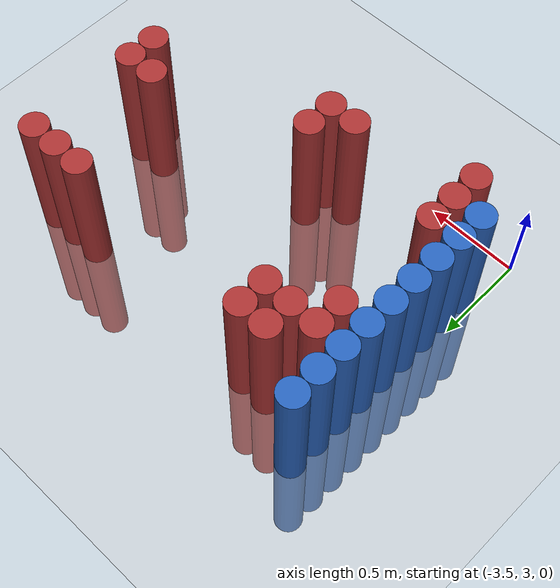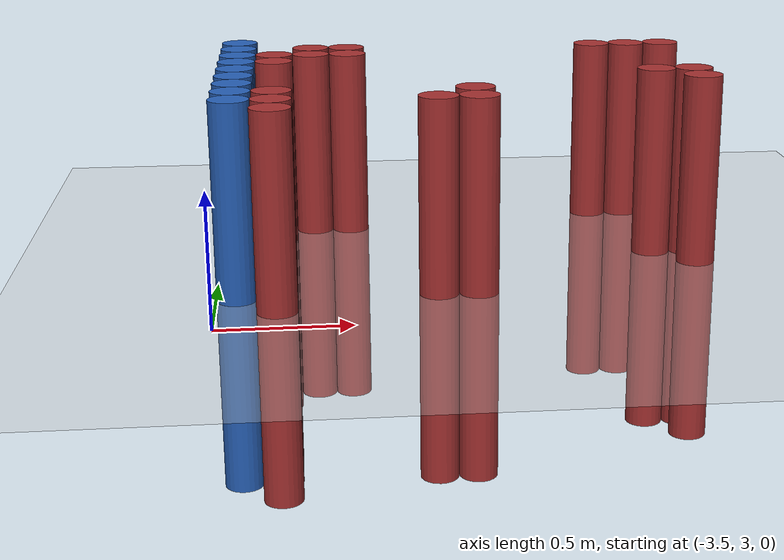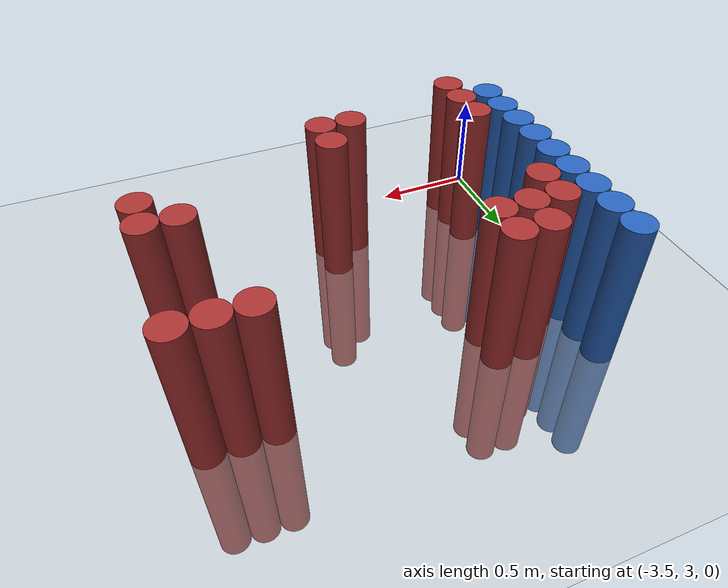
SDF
<sdf version="1.6">
 <world name="default">
  <model name="ground_plane">
   <static>1</static>
   <link name="link">
    <collision name="collision">
     <geometry><plane><normal>0 0 1</normal><size>100 100</size></plane></geometry>
     <surface><friction><ode><mu>100</mu><mu2>50</mu2></ode></friction></surface>
    </collision>
    <visual name="visual">
     <cast_shadows>0</cast_shadows>
     <geometry><plane><normal>0 0 1</normal><size>100 100</size></plane></geometry>
     <material>
      <script><uri>file://media/materials/scripts/gazebo.material</uri><name>Gazebo/Grey</name></script>
     </material>
    </visual>
   </link>
  </model>
  <model name="unit_cylinder_159">
   <static>1</static>
   <pose>-3.425000 3.325000 0.000000 0.000000 0.000000 0.000000</pose>
   <link name="link">
    <inertial>
     <mass>1</mass>
     <inertia><ixx>0.145833</ixx><ixy>0</ixy><ixz>0</ixz><iyy>0.145833</iyy><iyz>0</iyz><izz>0.125</izz></inertia>
    </inertial>
    <collision name="collision">
     <geometry><cylinder><radius>0.075000</radius><length>1.5</length></cylinder></geometry>
    </collision>
    <visual name="visual">
     <geometry><cylinder><radius>0.075000</radius><length>1.5</length></cylinder></geometry>
     <material>
      <ambient>0.152000 0.379000 0.720000 1</ambient>
      <diffuse>0.152000 0.379000 0.720000 1</diffuse>
     </material>
     <material>
      <script><name>Gazebo/Grey</name><uri>file://media/materials/scripts/gazebo.material</uri></script>
     </material>
    </visual>
   </link>
  </model>
  <model name="unit_cylinder_161">
   <static>1</static>
   <pose>-3.425000 3.475000 0.000000 0.000000 0.000000 0.000000</pose>
   <link name="link">
    <inertial>
     <mass>1</mass>
     <inertia><ixx>0.145833</ixx><ixy>0</ixy><ixz>0</ixz><iyy>0.145833</iyy><iyz>0</iyz><izz>0.125</izz></inertia>
    </inertial>
    <collision name="collision">
     <geometry><cylinder><radius>0.075000</radius><length>1.5</length></cylinder></geometry>
    </collision>
    <visual name="visual">
     <geometry><cylinder><radius>0.075000</radius><length>1.5</length></cylinder></geometry>
     <material>
      <ambient>0.152000 0.379000 0.720000 1</ambient>
      <diffuse>0.152000 0.379000 0.720000 1</diffuse>
     </material>
     <material>
      <script><name>Gazebo/Grey</name><uri>file://media/materials/scripts/gazebo.material</uri></script>
     </material>
    </visual>
   </link>
  </model>
  <model name="unit_cylinder_163">
   <static>1</static>
   <pose>-3.425000 3.625000 0.000000 0.000000 0.000000 0.000000</pose>
   <link name="link">
    <inertial>
     <mass>1</mass>
     <inertia><ixx>0.145833</ixx><ixy>0</ixy><ixz>0</ixz><iyy>0.145833</iyy><iyz>0</iyz><izz>0.125</izz></inertia>
    </inertial>
    <collision name="collision">
     <geometry><cylinder><radius>0.075000</radius><length>1.5</length></cylinder></geometry>
    </collision>
    <visual name="visual">
     <geometry><cylinder><radius>0.075000</radius><length>1.5</length></cylinder></geometry>
     <material>
      <ambient>0.152000 0.379000 0.720000 1</ambient>
      <diffuse>0.152000 0.379000 0.720000 1</diffuse>
     </material>
     <material>
      <script><name>Gazebo/Grey</name><uri>file://media/materials/scripts/gazebo.material</uri></script>
     </material>
    </visual>
   </link>
  </model>
  <model name="unit_cylinder_165">
   <static>1</static>
   <pose>-3.425000 3.775000 0.000000 0.000000 0.000000 0.000000</pose>
   <link name="link">
    <inertial>
     <mass>1</mass>
     <inertia><ixx>0.145833</ixx><ixy>0</ixy><ixz>0</ixz><iyy>0.145833</iyy><iyz>0</iyz><izz>0.125</izz></inertia>
    </inertial>
    <collision name="collision">
     <geometry><cylinder><radius>0.075000</radius><length>1.5</length></cylinder></geometry>
    </collision>
    <visual name="visual">
     <geometry><cylinder><radius>0.075000</radius><length>1.5</length></cylinder></geometry>
     <material>
      <ambient>0.152000 0.379000 0.720000 1</ambient>
      <diffuse>0.152000 0.379000 0.720000 1</diffuse>
     </material>
     <material>
      <script><name>Gazebo/Grey</name><uri>file://media/materials/scripts/gazebo.material</uri></script>
     </material>
    </visual>
   </link>
  </model>
  <model name="unit_cylinder_167">
   <static>1</static>
   <pose>-3.425000 3.925000 0.000000 0.000000 0.000000 0.000000</pose>
   <link name="link">
    <inertial>
     <mass>1</mass>
     <inertia><ixx>0.145833</ixx><ixy>0</ixy><ixz>0</ixz><iyy>0.145833</iyy><iyz>0</iyz><izz>0.125</izz></inertia>
    </inertial>
    <collision name="collision">
     <geometry><cylinder><radius>0.075000</radius><length>1.5</length></cylinder></geometry>
    </collision>
    <visual name="visual">
     <geometry><cylinder><radius>0.075000</radius><length>1.5</length></cylinder></geometry>
     <material>
      <ambient>0.152000 0.379000 0.720000 1</ambient>
      <diffuse>0.152000 0.379000 0.720000 1</diffuse>
     </material>
     <material>
      <script><name>Gazebo/Grey</name><uri>file://media/materials/scripts/gazebo.material</uri></script>
     </material>
    </visual>
   </link>
  </model>
  <model name="unit_cylinder_169">
   <static>1</static>
   <pose>-3.425000 4.075000 0.000000 0.000000 0.000000 0.000000</pose>
   <link name="link">
    <inertial>
     <mass>1</mass>
     <inertia><ixx>0.145833</ixx><ixy>0</ixy><ixz>0</ixz><iyy>0.145833</iyy><iyz>0</iyz><izz>0.125</izz></inertia>
    </inertial>
    <collision name="collision">
     <geometry><cylinder><radius>0.075000</radius><length>1.5</length></cylinder></geometry>
    </collision>
    <visual name="visual">
     <geometry><cylinder><radius>0.075000</radius><length>1.5</length></cylinder></geometry>
     <material>
      <ambient>0.152000 0.379000 0.720000 1</ambient>
      <diffuse>0.152000 0.379000 0.720000 1</diffuse>
     </material>
     <material>
      <script><name>Gazebo/Grey</name><uri>file://media/materials/scripts/gazebo.material</uri></script>
     </material>
    </visual>
   </link>
  </model>
  <model name="unit_cylinder_171">
   <static>1</static>
   <pose>-3.425000 4.225000 0.000000 0.000000 0.000000 0.000000</pose>
   <link name="link">
    <inertial>
     <mass>1</mass>
     <inertia><ixx>0.145833</ixx><ixy>0</ixy><ixz>0</ixz><iyy>0.145833</iyy><iyz>0</iyz><izz>0.125</izz></inertia>
    </inertial>
    <collision name="collision">
     <geometry><cylinder><radius>0.075000</radius><length>1.5</length></cylinder></geometry>
    </collision>
    <visual name="visual">
     <geometry><cylinder><radius>0.075000</radius><length>1.5</length></cylinder></geometry>
     <material>
      <ambient>0.152000 0.379000 0.720000 1</ambient>
      <diffuse>0.152000 0.379000 0.720000 1</diffuse>
     </material>
     <material>
      <script><name>Gazebo/Grey</name><uri>file://media/materials/scripts/gazebo.material</uri></script>
     </material>
    </visual>
   </link>
  </model>
  <model name="unit_cylinder_173">
   <static>1</static>
   <pose>-3.425000 4.375000 0.000000 0.000000 0.000000 0.000000</pose>
   <link name="link">
    <inertial>
     <mass>1</mass>
     <inertia><ixx>0.145833</ixx><ixy>0</ixy><ixz>0</ixz><iyy>0.145833</iyy><iyz>0</iyz><izz>0.125</izz></inertia>
    </inertial>
    <collision name="collision">
     <geometry><cylinder><radius>0.075000</radius><length>1.5</length></cylinder></geometry>
    </collision>
    <visual name="visual">
     <geometry><cylinder><radius>0.075000</radius><length>1.5</length></cylinder></geometry>
     <material>
      <ambient>0.152000 0.379000 0.720000 1</ambient>
      <diffuse>0.152000 0.379000 0.720000 1</diffuse>
     </material>
     <material>
      <script><name>Gazebo/Grey</name><uri>file://media/materials/scripts/gazebo.material</uri></script>
     </material>
    </visual>
   </link>
  </model>
  <model name="unit_cylinder_175">
   <static>1</static>
   <pose>-3.425000 4.525000 0.000000 0.000000 0.000000 0.000000</pose>
   <link name="link">
    <inertial>
     <mass>1</mass>
     <inertia><ixx>0.145833</ixx><ixy>0</ixy><ixz>0</ixz><iyy>0.145833</iyy><iyz>0</iyz><izz>0.125</izz></inertia>
    </inertial>
    <collision name="collision">
     <geometry><cylinder><radius>0.075000</radius><length>1.5</length></cylinder></geometry>
    </collision>
    <visual name="visual">
     <geometry><cylinder><radius>0.075000</radius><length>1.5</length></cylinder></geometry>
     <material>
      <ambient>0.152000 0.379000 0.720000 1</ambient>
      <diffuse>0.152000 0.379000 0.720000 1</diffuse>
     </material>
     <material>
      <script><name>Gazebo/Grey</name><uri>file://media/materials/scripts/gazebo.material</uri></script>
     </material>
    </visual>
   </link>
  </model>
  <model name="unit_cylinder_243">
   <static>1</static>
   <pose>-3.425000 3.325000 0.000000 0.000000 0.000000 0.000000</pose>
   <link name="link">
    <inertial>
     <mass>1</mass>
     <inertia><ixx>0.145833</ixx><ixy>0</ixy><ixz>0</ixz><iyy>0.145833</iyy><iyz>0</iyz><izz>0.125</izz></inertia>
    </inertial>
    <collision name="collision">
     <geometry><cylinder><radius>0.075000</radius><length>1.5</length></cylinder></geometry>
    </collision>
    <visual name="visual">
     <geometry><cylinder><radius>0.075000</radius><length>1.5</length></cylinder></geometry>
     <material>
      <ambient>0.152000 0.379000 0.720000 1</ambient>
      <diffuse>0.152000 0.379000 0.720000 1</diffuse>
     </material>
     <material>
      <script><name>Gazebo/Grey</name><uri>file://media/materials/scripts/gazebo.material</uri></script>
     </material>
    </visual>
   </link>
  </model>
  <model name="unit_cylinder_244">
   <static>1</static>
   <pose>-3.425000 3.475000 0.000000 0.000000 0.000000 0.000000</pose>
   <link name="link">
    <inertial>
     <mass>1</mass>
     <inertia><ixx>0.145833</ixx><ixy>0</ixy><ixz>0</ixz><iyy>0.145833</iyy><iyz>0</iyz><izz>0.125</izz></inertia>
    </inertial>
    <collision name="collision">
     <geometry><cylinder><radius>0.075000</radius><length>1.5</length></cylinder></geometry>
    </collision>
    <visual name="visual">
     <geometry><cylinder><radius>0.075000</radius><length>1.5</length></cylinder></geometry>
     <material>
      <ambient>0.152000 0.379000 0.720000 1</ambient>
      <diffuse>0.152000 0.379000 0.720000 1</diffuse>
     </material>
     <material>
      <script><name>Gazebo/Grey</name><uri>file://media/materials/scripts/gazebo.material</uri></script>
     </material>
    </visual>
   </link>
  </model>
  <model name="unit_cylinder_245">
   <static>1</static>
   <pose>-3.425000 3.625000 0.000000 0.000000 0.000000 0.000000</pose>
   <link name="link">
    <inertial>
     <mass>1</mass>
     <inertia><ixx>0.145833</ixx><ixy>0</ixy><ixz>0</ixz><iyy>0.145833</iyy><iyz>0</iyz><izz>0.125</izz></inertia>
    </inertial>
    <collision name="collision">
     <geometry><cylinder><radius>0.075000</radius><length>1.5</length></cylinder></geometry>
    </collision>
    <visual name="visual">
     <geometry><cylinder><radius>0.075000</radius><length>1.5</length></cylinder></geometry>
     <material>
      <ambient>0.152000 0.379000 0.720000 1</ambient>
      <diffuse>0.152000 0.379000 0.720000 1</diffuse>
     </material>
     <material>
      <script><name>Gazebo/Grey</name><uri>file://media/materials/scripts/gazebo.material</uri></script>
     </material>
    </visual>
   </link>
  </model>
  <model name="unit_cylinder_246">
   <static>1</static>
   <pose>-3.425000 3.775000 0.000000 0.000000 0.000000 0.000000</pose>
   <link name="link">
    <inertial>
     <mass>1</mass>
     <inertia><ixx>0.145833</ixx><ixy>0</ixy><ixz>0</ixz><iyy>0.145833</iyy><iyz>0</iyz><izz>0.125</izz></inertia>
    </inertial>
    <collision name="collision">
     <geometry><cylinder><radius>0.075000</radius><length>1.5</length></cylinder></geometry>
    </collision>
    <visual name="visual">
     <geometry><cylinder><radius>0.075000</radius><length>1.5</length></cylinder></geometry>
     <material>
      <ambient>0.152000 0.379000 0.720000 1</ambient>
      <diffuse>0.152000 0.379000 0.720000 1</diffuse>
     </material>
     <material>
      <script><name>Gazebo/Grey</name><uri>file://media/materials/scripts/gazebo.material</uri></script>
     </material>
    </visual>
   </link>
  </model>
  <model name="unit_cylinder_247">
   <static>1</static>
   <pose>-3.425000 3.925000 0.000000 0.000000 0.000000 0.000000</pose>
   <link name="link">
    <inertial>
     <mass>1</mass>
     <inertia><ixx>0.145833</ixx><ixy>0</ixy><ixz>0</ixz><iyy>0.145833</iyy><iyz>0</iyz><izz>0.125</izz></inertia>
    </inertial>
    <collision name="collision">
     <geometry><cylinder><radius>0.075000</radius><length>1.5</length></cylinder></geometry>
    </collision>
    <visual name="visual">
     <geometry><cylinder><radius>0.075000</radius><length>1.5</length></cylinder></geometry>
     <material>
      <ambient>0.152000 0.379000 0.720000 1</ambient>
      <diffuse>0.152000 0.379000 0.720000 1</diffuse>
     </material>
     <material>
      <script><name>Gazebo/Grey</name><uri>file://media/materials/scripts/gazebo.material</uri></script>
     </material>
    </visual>
   </link>
  </model>
  <model name="unit_cylinder_248">
   <static>1</static>
   <pose>-3.425000 4.075000 0.000000 0.000000 0.000000 0.000000</pose>
   <link name="link">
    <inertial>
     <mass>1</mass>
     <inertia><ixx>0.145833</ixx><ixy>0</ixy><ixz>0</ixz><iyy>0.145833</iyy><iyz>0</iyz><izz>0.125</izz></inertia>
    </inertial>
    <collision name="collision">
     <geometry><cylinder><radius>0.075000</radius><length>1.5</length></cylinder></geometry>
    </collision>
    <visual name="visual">
     <geometry><cylinder><radius>0.075000</radius><length>1.5</length></cylinder></geometry>
     <material>
      <ambient>0.152000 0.379000 0.720000 1</ambient>
      <diffuse>0.152000 0.379000 0.720000 1</diffuse>
     </material>
     <material>
      <script><name>Gazebo/Grey</name><uri>file://media/materials/scripts/gazebo.material</uri></script>
     </material>
    </visual>
   </link>
  </model>
  <model name="unit_cylinder_249">
   <static>1</static>
   <pose>-3.425000 4.225000 0.000000 0.000000 0.000000 0.000000</pose>
   <link name="link">
    <inertial>
     <mass>1</mass>
     <inertia><ixx>0.145833</ixx><ixy>0</ixy><ixz>0</ixz><iyy>0.145833</iyy><iyz>0</iyz><izz>0.125</izz></inertia>
    </inertial>
    <collision name="collision">
     <geometry><cylinder><radius>0.075000</radius><length>1.5</length></cylinder></geometry>
    </collision>
    <visual name="visual">
     <geometry><cylinder><radius>0.075000</radius><length>1.5</length></cylinder></geometry>
     <material>
      <ambient>0.152000 0.379000 0.720000 1</ambient>
      <diffuse>0.152000 0.379000 0.720000 1</diffuse>
     </material>
     <material>
      <script><name>Gazebo/Grey</name><uri>file://media/materials/scripts/gazebo.material</uri></script>
     </material>
    </visual>
   </link>
  </model>
  <model name="unit_cylinder_250">
   <static>1</static>
   <pose>-3.425000 4.375000 0.000000 0.000000 0.000000 0.000000</pose>
   <link name="link">
    <inertial>
     <mass>1</mass>
     <inertia><ixx>0.145833</ixx><ixy>0</ixy><ixz>0</ixz><iyy>0.145833</iyy><iyz>0</iyz><izz>0.125</izz></inertia>
    </inertial>
    <collision name="collision">
     <geometry><cylinder><radius>0.075000</radius><length>1.5</length></cylinder></geometry>
    </collision>
    <visual name="visual">
     <geometry><cylinder><radius>0.075000</radius><length>1.5</length></cylinder></geometry>
     <material>
      <ambient>0.152000 0.379000 0.720000 1</ambient>
      <diffuse>0.152000 0.379000 0.720000 1</diffuse>
     </material>
     <material>
      <script><name>Gazebo/Grey</name><uri>file://media/materials/scripts/gazebo.material</uri></script>
     </material>
    </visual>
   </link>
  </model>
  <model name="unit_cylinder_251">
   <static>1</static>
   <pose>-3.425000 4.525000 0.000000 0.000000 0.000000 0.000000</pose>
   <link name="link">
    <inertial>
     <mass>1</mass>
     <inertia><ixx>0.145833</ixx><ixy>0</ixy><ixz>0</ixz><iyy>0.145833</iyy><iyz>0</iyz><izz>0.125</izz></inertia>
    </inertial>
    <collision name="collision">
     <geometry><cylinder><radius>0.075000</radius><length>1.5</length></cylinder></geometry>
    </collision>
    <visual name="visual">
     <geometry><cylinder><radius>0.075000</radius><length>1.5</length></cylinder></geometry>
     <material>
      <ambient>0.152000 0.379000 0.720000 1</ambient>
      <diffuse>0.152000 0.379000 0.720000 1</diffuse>
     </material>
     <material>
      <script><name>Gazebo/Grey</name><uri>file://media/materials/scripts/gazebo.material</uri></script>
     </material>
    </visual>
   </link>
  </model>
  <model name="unit_cylinder_266">
   <static>1</static>
   <pose>-3.275000 3.175000 0.000000 0.000000 0.000000 0.000000</pose>
   <link name="link">
    <inertial>
     <mass>1</mass>
     <inertia><ixx>0.145833</ixx><ixy>0</ixy><ixz>0</ixz><iyy>0.145833</iyy><iyz>0</iyz><izz>0.125</izz></inertia>
    </inertial>
    <collision name="collision">
     <geometry><cylinder><radius>0.075000</radius><length>1.5</length></cylinder></geometry>
    </collision>
    <visual name="visual">
     <geometry><cylinder><radius>0.075000</radius><length>1.5</length></cylinder></geometry>
     <material>
      <ambient>0.648000 0.192000 0.192000 1</ambient>
      <diffuse>0.648000 0.192000 0.192000 1</diffuse>
     </material>
     <material>
      <script><name>Gazebo/Grey</name><uri>file://media/materials/scripts/gazebo.material</uri></script>
     </material>
    </visual>
   </link>
  </model>
  <model name="unit_cylinder_267">
   <static>1</static>
   <pose>-3.275000 3.325000 0.000000 0.000000 0.000000 0.000000</pose>
   <link name="link">
    <inertial>
     <mass>1</mass>
     <inertia><ixx>0.145833</ixx><ixy>0</ixy><ixz>0</ixz><iyy>0.145833</iyy><iyz>0</iyz><izz>0.125</izz></inertia>
    </inertial>
    <collision name="collision">
     <geometry><cylinder><radius>0.075000</radius><length>1.5</length></cylinder></geometry>
    </collision>
    <visual name="visual">
     <geometry><cylinder><radius>0.075000</radius><length>1.5</length></cylinder></geometry>
     <material>
      <ambient>0.648000 0.192000 0.192000 1</ambient>
      <diffuse>0.648000 0.192000 0.192000 1</diffuse>
     </material>
     <material>
      <script><name>Gazebo/Grey</name><uri>file://media/materials/scripts/gazebo.material</uri></script>
     </material>
    </visual>
   </link>
  </model>
  <model name="unit_cylinder_268">
   <static>1</static>
   <pose>-3.275000 3.475000 0.000000 0.000000 0.000000 0.000000</pose>
   <link name="link">
    <inertial>
     <mass>1</mass>
     <inertia><ixx>0.145833</ixx><ixy>0</ixy><ixz>0</ixz><iyy>0.145833</iyy><iyz>0</iyz><izz>0.125</izz></inertia>
    </inertial>
    <collision name="collision">
     <geometry><cylinder><radius>0.075000</radius><length>1.5</length></cylinder></geometry>
    </collision>
    <visual name="visual">
     <geometry><cylinder><radius>0.075000</radius><length>1.5</length></cylinder></geometry>
     <material>
      <ambient>0.648000 0.192000 0.192000 1</ambient>
      <diffuse>0.648000 0.192000 0.192000 1</diffuse>
     </material>
     <material>
      <script><name>Gazebo/Grey</name><uri>file://media/materials/scripts/gazebo.material</uri></script>
     </material>
    </visual>
   </link>
  </model>
  <model name="unit_cylinder_269">
   <static>1</static>
   <pose>-3.275000 4.075000 0.000000 0.000000 0.000000 0.000000</pose>
   <link name="link">
    <inertial>
     <mass>1</mass>
     <inertia><ixx>0.145833</ixx><ixy>0</ixy><ixz>0</ixz><iyy>0.145833</iyy><iyz>0</iyz><izz>0.125</izz></inertia>
    </inertial>
    <collision name="collision">
     <geometry><cylinder><radius>0.075000</radius><length>1.5</length></cylinder></geometry>
    </collision>
    <visual name="visual">
     <geometry><cylinder><radius>0.075000</radius><length>1.5</length></cylinder></geometry>
     <material>
      <ambient>0.648000 0.192000 0.192000 1</ambient>
      <diffuse>0.648000 0.192000 0.192000 1</diffuse>
     </material>
     <material>
      <script><name>Gazebo/Grey</name><uri>file://media/materials/scripts/gazebo.material</uri></script>
     </material>
    </visual>
   </link>
  </model>
  <model name="unit_cylinder_270">
   <static>1</static>
   <pose>-3.275000 4.225000 0.000000 0.000000 0.000000 0.000000</pose>
   <link name="link">
    <inertial>
     <mass>1</mass>
     <inertia><ixx>0.145833</ixx><ixy>0</ixy><ixz>0</ixz><iyy>0.145833</iyy><iyz>0</iyz><izz>0.125</izz></inertia>
    </inertial>
    <collision name="collision">
     <geometry><cylinder><radius>0.075000</radius><length>1.5</length></cylinder></geometry>
    </collision>
    <visual name="visual">
     <geometry><cylinder><radius>0.075000</radius><length>1.5</length></cylinder></geometry>
     <material>
      <ambient>0.648000 0.192000 0.192000 1</ambient>
      <diffuse>0.648000 0.192000 0.192000 1</diffuse>
     </material>
     <material>
      <script><name>Gazebo/Grey</name><uri>file://media/materials/scripts/gazebo.material</uri></script>
     </material>
    </visual>
   </link>
  </model>
  <model name="unit_cylinder_273">
   <static>1</static>
   <pose>-3.125000 4.225000 0.000000 0.000000 0.000000 0.000000</pose>
   <link name="link">
    <inertial>
     <mass>1</mass>
     <inertia><ixx>0.145833</ixx><ixy>0</ixy><ixz>0</ixz><iyy>0.145833</iyy><iyz>0</iyz><izz>0.125</izz></inertia>
    </inertial>
    <collision name="collision">
     <geometry><cylinder><radius>0.075000</radius><length>1.5</length></cylinder></geometry>
    </collision>
    <visual name="visual">
     <geometry><cylinder><radius>0.075000</radius><length>1.5</length></cylinder></geometry>
     <material>
      <ambient>0.648000 0.192000 0.192000 1</ambient>
      <diffuse>0.648000 0.192000 0.192000 1</diffuse>
     </material>
     <material>
      <script><name>Gazebo/Grey</name><uri>file://media/materials/scripts/gazebo.material</uri></script>
     </material>
    </visual>
   </link>
  </model>
  <model name="unit_cylinder_274">
   <static>1</static>
   <pose>-3.125000 4.375000 0.000000 0.000000 0.000000 0.000000</pose>
   <link name="link">
    <inertial>
     <mass>1</mass>
     <inertia><ixx>0.145833</ixx><ixy>0</ixy><ixz>0</ixz><iyy>0.145833</iyy><iyz>0</iyz><izz>0.125</izz></inertia>
    </inertial>
    <collision name="collision">
     <geometry><cylinder><radius>0.075000</radius><length>1.5</length></cylinder></geometry>
    </collision>
    <visual name="visual">
     <geometry><cylinder><radius>0.075000</radius><length>1.5</length></cylinder></geometry>
     <material>
      <ambient>0.648000 0.192000 0.192000 1</ambient>
      <diffuse>0.648000 0.192000 0.192000 1</diffuse>
     </material>
     <material>
      <script><name>Gazebo/Grey</name><uri>file://media/materials/scripts/gazebo.material</uri></script>
     </material>
    </visual>
   </link>
  </model>
  <model name="unit_cylinder_279">
   <static>1</static>
   <pose>-2.975000 4.225000 0.000000 0.000000 0.000000 0.000000</pose>
   <link name="link">
    <inertial>
     <mass>1</mass>
     <inertia><ixx>0.145833</ixx><ixy>0</ixy><ixz>0</ixz><iyy>0.145833</iyy><iyz>0</iyz><izz>0.125</izz></inertia>
    </inertial>
    <collision name="collision">
     <geometry><cylinder><radius>0.075000</radius><length>1.5</length></cylinder></geometry>
    </collision>
    <visual name="visual">
     <geometry><cylinder><radius>0.075000</radius><length>1.5</length></cylinder></geometry>
     <material>
      <ambient>0.648000 0.192000 0.192000 1</ambient>
      <diffuse>0.648000 0.192000 0.192000 1</diffuse>
     </material>
     <material>
      <script><name>Gazebo/Grey</name><uri>file://media/materials/scripts/gazebo.material</uri></script>
     </material>
    </visual>
   </link>
  </model>
  <model name="unit_cylinder_280">
   <static>1</static>
   <pose>-2.975000 4.375000 0.000000 0.000000 0.000000 0.000000</pose>
   <link name="link">
    <inertial>
     <mass>1</mass>
     <inertia><ixx>0.145833</ixx><ixy>0</ixy><ixz>0</ixz><iyy>0.145833</iyy><iyz>0</iyz><izz>0.125</izz></inertia>
    </inertial>
    <collision name="collision">
     <geometry><cylinder><radius>0.075000</radius><length>1.5</length></cylinder></geometry>
    </collision>
    <visual name="visual">
     <geometry><cylinder><radius>0.075000</radius><length>1.5</length></cylinder></geometry>
     <material>
      <ambient>0.648000 0.192000 0.192000 1</ambient>
      <diffuse>0.648000 0.192000 0.192000 1</diffuse>
     </material>
     <material>
      <script><name>Gazebo/Grey</name><uri>file://media/materials/scripts/gazebo.material</uri></script>
     </material>
    </visual>
   </link>
  </model>
  <model name="unit_cylinder_290">
   <static>1</static>
   <pose>-2.675000 3.325000 0.000000 0.000000 0.000000 0.000000</pose>
   <link name="link">
    <inertial>
     <mass>1</mass>
     <inertia><ixx>0.145833</ixx><ixy>0</ixy><ixz>0</ixz><iyy>0.145833</iyy><iyz>0</iyz><izz>0.125</izz></inertia>
    </inertial>
    <collision name="collision">
     <geometry><cylinder><radius>0.075000</radius><length>1.5</length></cylinder></geometry>
    </collision>
    <visual name="visual">
     <geometry><cylinder><radius>0.075000</radius><length>1.5</length></cylinder></geometry>
     <material>
      <ambient>0.648000 0.192000 0.192000 1</ambient>
      <diffuse>0.648000 0.192000 0.192000 1</diffuse>
     </material>
     <material>
      <script><name>Gazebo/Grey</name><uri>file://media/materials/scripts/gazebo.material</uri></script>
     </material>
    </visual>
   </link>
  </model>
  <model name="unit_cylinder_295">
   <static>1</static>
   <pose>-2.525000 3.325000 0.000000 0.000000 0.000000 0.000000</pose>
   <link name="link">
    <inertial>
     <mass>1</mass>
     <inertia><ixx>0.145833</ixx><ixy>0</ixy><ixz>0</ixz><iyy>0.145833</iyy><iyz>0</iyz><izz>0.125</izz></inertia>
    </inertial>
    <collision name="collision">
     <geometry><cylinder><radius>0.075000</radius><length>1.5</length></cylinder></geometry>
    </collision>
    <visual name="visual">
     <geometry><cylinder><radius>0.075000</radius><length>1.5</length></cylinder></geometry>
     <material>
      <ambient>0.648000 0.192000 0.192000 1</ambient>
      <diffuse>0.648000 0.192000 0.192000 1</diffuse>
     </material>
     <material>
      <script><name>Gazebo/Grey</name><uri>file://media/materials/scripts/gazebo.material</uri></script>
     </material>
    </visual>
   </link>
  </model>
  <model name="unit_cylinder_296">
   <static>1</static>
   <pose>-2.525000 3.475000 0.000000 0.000000 0.000000 0.000000</pose>
   <link name="link">
    <inertial>
     <mass>1</mass>
     <inertia><ixx>0.145833</ixx><ixy>0</ixy><ixz>0</ixz><iyy>0.145833</iyy><iyz>0</iyz><izz>0.125</izz></inertia>
    </inertial>
    <collision name="collision">
     <geometry><cylinder><radius>0.075000</radius><length>1.5</length></cylinder></geometry>
    </collision>
    <visual name="visual">
     <geometry><cylinder><radius>0.075000</radius><length>1.5</length></cylinder></geometry>
     <material>
      <ambient>0.648000 0.192000 0.192000 1</ambient>
      <diffuse>0.648000 0.192000 0.192000 1</diffuse>
     </material>
     <material>
      <script><name>Gazebo/Grey</name><uri>file://media/materials/scripts/gazebo.material</uri></script>
     </material>
    </visual>
   </link>
  </model>
  <model name="unit_cylinder_305">
   <static>1</static>
   <pose>-1.925000 4.375000 0.000000 0.000000 0.000000 0.000000</pose>
   <link name="link">
    <inertial>
     <mass>1</mass>
     <inertia><ixx>0.145833</ixx><ixy>0</ixy><ixz>0</ixz><iyy>0.145833</iyy><iyz>0</iyz><izz>0.125</izz></inertia>
    </inertial>
    <collision name="collision">
     <geometry><cylinder><radius>0.075000</radius><length>1.5</length></cylinder></geometry>
    </collision>
    <visual name="visual">
     <geometry><cylinder><radius>0.075000</radius><length>1.5</length></cylinder></geometry>
     <material>
      <ambient>0.648000 0.192000 0.192000 1</ambient>
      <diffuse>0.648000 0.192000 0.192000 1</diffuse>
     </material>
     <material>
      <script><name>Gazebo/Grey</name><uri>file://media/materials/scripts/gazebo.material</uri></script>
     </material>
    </visual>
   </link>
  </model>
  <model name="unit_cylinder_309">
   <static>1</static>
   <pose>-1.775000 3.775000 0.000000 0.000000 0.000000 0.000000</pose>
   <link name="link">
    <inertial>
     <mass>1</mass>
     <inertia><ixx>0.145833</ixx><ixy>0</ixy><ixz>0</ixz><iyy>0.145833</iyy><iyz>0</iyz><izz>0.125</izz></inertia>
    </inertial>
    <collision name="collision">
     <geometry><cylinder><radius>0.075000</radius><length>1.5</length></cylinder></geometry>
    </collision>
    <visual name="visual">
     <geometry><cylinder><radius>0.075000</radius><length>1.5</length></cylinder></geometry>
     <material>
      <ambient>0.648000 0.192000 0.192000 1</ambient>
      <diffuse>0.648000 0.192000 0.192000 1</diffuse>
     </material>
     <material>
      <script><name>Gazebo/Grey</name><uri>file://media/materials/scripts/gazebo.material</uri></script>
     </material>
    </visual>
   </link>
  </model>
  <model name="unit_cylinder_310">
   <static>1</static>
   <pose>-1.775000 4.375000 0.000000 0.000000 0.000000 0.000000</pose>
   <link name="link">
    <inertial>
     <mass>1</mass>
     <inertia><ixx>0.145833</ixx><ixy>0</ixy><ixz>0</ixz><iyy>0.145833</iyy><iyz>0</iyz><izz>0.125</izz></inertia>
    </inertial>
    <collision name="collision">
     <geometry><cylinder><radius>0.075000</radius><length>1.5</length></cylinder></geometry>
    </collision>
    <visual name="visual">
     <geometry><cylinder><radius>0.075000</radius><length>1.5</length></cylinder></geometry>
     <material>
      <ambient>0.648000 0.192000 0.192000 1</ambient>
      <diffuse>0.648000 0.192000 0.192000 1</diffuse>
     </material>
     <material>
      <script><name>Gazebo/Grey</name><uri>file://media/materials/scripts/gazebo.material</uri></script>
     </material>
    </visual>
   </link>
  </model>
  <model name="unit_cylinder_316">
   <static>1</static>
   <pose>-1.625000 3.625000 0.000000 0.000000 0.000000 0.000000</pose>
   <link name="link">
    <inertial>
     <mass>1</mass>
     <inertia><ixx>0.145833</ixx><ixy>0</ixy><ixz>0</ixz><iyy>0.145833</iyy><iyz>0</iyz><izz>0.125</izz></inertia>
    </inertial>
    <collision name="collision">
     <geometry><cylinder><radius>0.075000</radius><length>1.5</length></cylinder></geometry>
    </collision>
    <visual name="visual">
     <geometry><cylinder><radius>0.075000</radius><length>1.5</length></cylinder></geometry>
     <material>
      <ambient>0.648000 0.192000 0.192000 1</ambient>
      <diffuse>0.648000 0.192000 0.192000 1</diffuse>
     </material>
     <material>
      <script><name>Gazebo/Grey</name><uri>file://media/materials/scripts/gazebo.material</uri></script>
     </material>
    </visual>
   </link>
  </model>
  <model name="unit_cylinder_317">
   <static>1</static>
   <pose>-1.625000 3.775000 0.000000 0.000000 0.000000 0.000000</pose>
   <link name="link">
    <inertial>
     <mass>1</mass>
     <inertia><ixx>0.145833</ixx><ixy>0</ixy><ixz>0</ixz><iyy>0.145833</iyy><iyz>0</iyz><izz>0.125</izz></inertia>
    </inertial>
    <collision name="collision">
     <geometry><cylinder><radius>0.075000</radius><length>1.5</length></cylinder></geometry>
    </collision>
    <visual name="visual">
     <geometry><cylinder><radius>0.075000</radius><length>1.5</length></cylinder></geometry>
     <material>
      <ambient>0.648000 0.192000 0.192000 1</ambient>
      <diffuse>0.648000 0.192000 0.192000 1</diffuse>
     </material>
     <material>
      <script><name>Gazebo/Grey</name><uri>file://media/materials/scripts/gazebo.material</uri></script>
     </material>
    </visual>
   </link>
  </model>
  <model name="unit_cylinder_318">
   <static>1</static>
   <pose>-1.625000 4.375000 0.000000 0.000000 0.000000 0.000000</pose>
   <link name="link">
    <inertial>
     <mass>1</mass>
     <inertia><ixx>0.145833</ixx><ixy>0</ixy><ixz>0</ixz><iyy>0.145833</iyy><iyz>0</iyz><izz>0.125</izz></inertia>
    </inertial>
    <collision name="collision">
     <geometry><cylinder><radius>0.075000</radius><length>1.5</length></cylinder></geometry>
    </collision>
    <visual name="visual">
     <geometry><cylinder><radius>0.075000</radius><length>1.5</length></cylinder></geometry>
     <material>
      <ambient>0.648000 0.192000 0.192000 1</ambient>
      <diffuse>0.648000 0.192000 0.192000 1</diffuse>
     </material>
     <material>
      <script><name>Gazebo/Grey</name><uri>file://media/materials/scripts/gazebo.material</uri></script>
     </material>
    </visual>
   </link>
  </model>
 </world>
</sdf>
